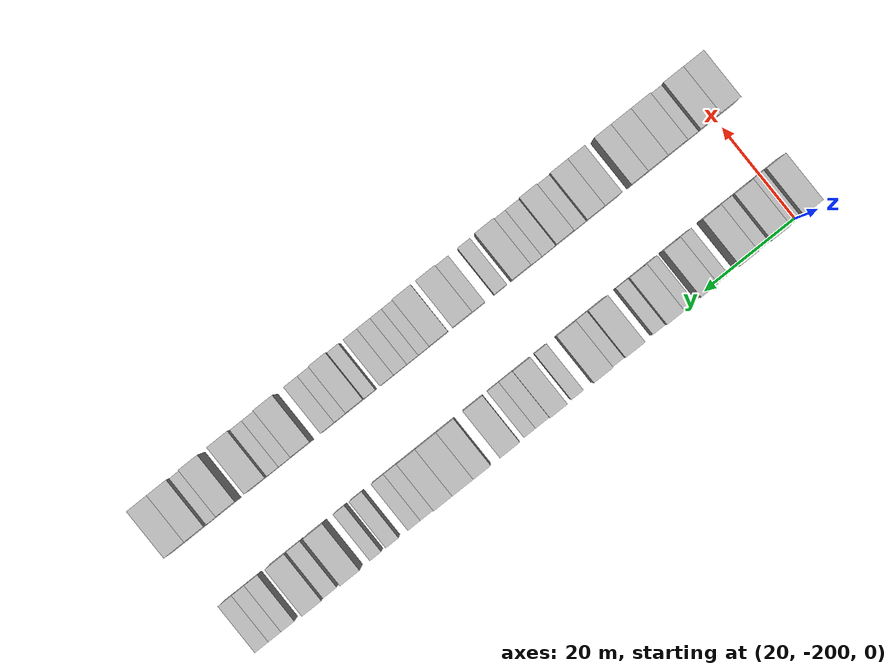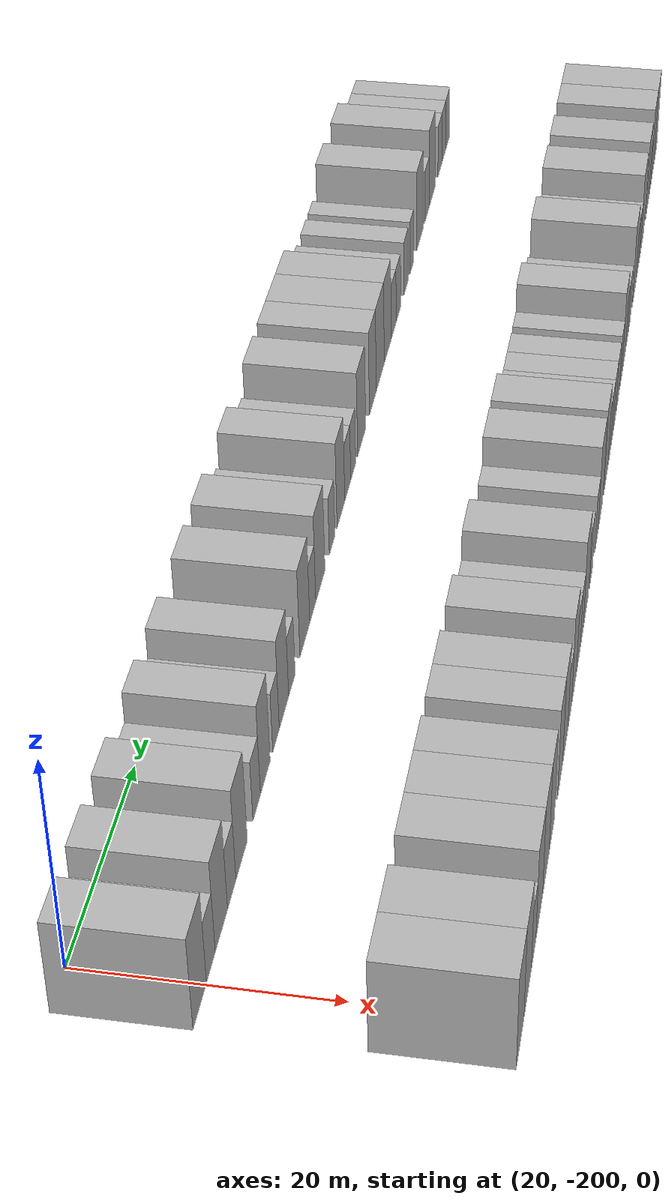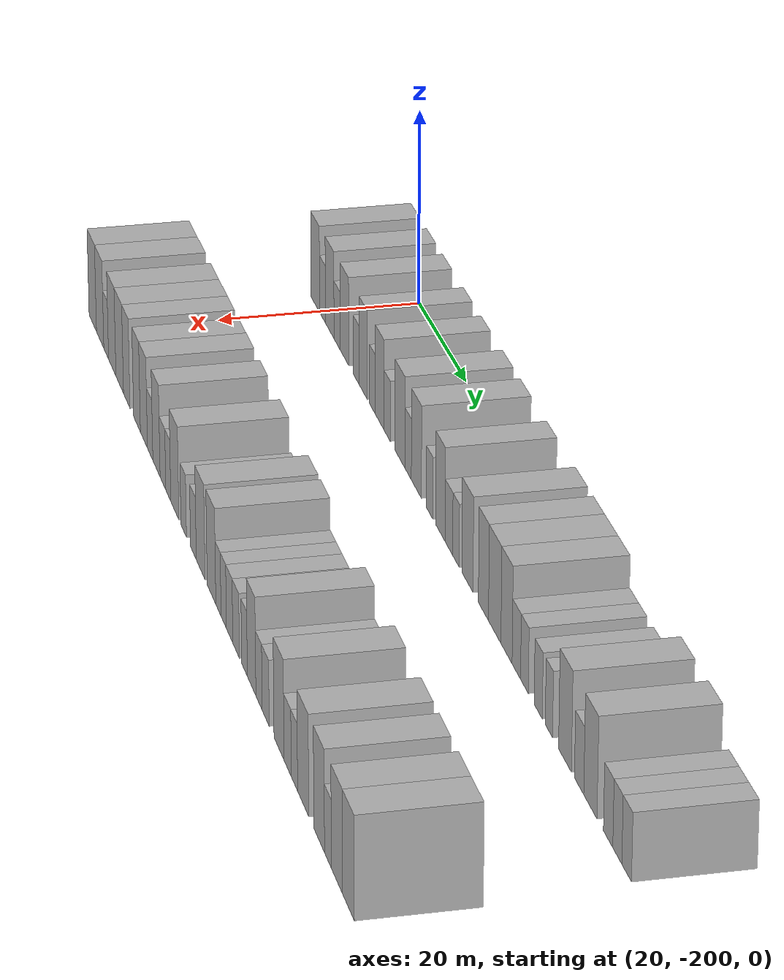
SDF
<sdf version="1.6">
 <world name="default">
  <model name="building_1">
   <static>1</static>
   <pose>25.0000 -201.9250 0 0.000000 0.000000 0.000000</pose>
   <link name="link">
    <pose>0 0 4.50 0 0 0</pose>
    <collision name="collision"><geometry><box><size>10.0000 4.1501 9.0000</size></box></geometry></collision>
    <visual name="visual">
     <cast_shadows>0</cast_shadows>
     <geometry><box><size>10.0000 4.1501 9.0000</size></box></geometry>
     <material>
      <script>
       <uri>model://HANNAS_wall/materials/scripts</uri>
       <uri>model://HANNAS_wall/materials/textures</uri>
       <name>vrc/HANNAS_wall</name>
      </script>
     </material>
    </visual>
   </link>
  </model>
  <model name="building_2">
   <static>1</static>
   <pose>25.0000 -198.4543 0 0.000000 0.000000 0.000000</pose>
   <link name="link">
    <pose>0 0 3.00 0 0 0</pose>
    <collision name="collision"><geometry><box><size>10.0000 2.7912 6.0000</size></box></geometry></collision>
    <visual name="visual">
     <cast_shadows>0</cast_shadows>
     <geometry><box><size>10.0000 2.7912 6.0000</size></box></geometry>
     <material>
      <script>
       <uri>model://HANNAS_wall/materials/scripts</uri>
       <uri>model://HANNAS_wall/materials/textures</uri>
       <name>vrc/HANNAS_wall</name>
      </script>
     </material>
    </visual>
   </link>
  </model>
  <model name="building_3">
   <static>1</static>
   <pose>25.0000 -195.0415 0 0.000000 0.000000 0.000000</pose>
   <link name="link">
    <pose>0 0 4.50 0 0 0</pose>
    <collision name="collision"><geometry><box><size>10.0000 4.0345 9.0000</size></box></geometry></collision>
    <visual name="visual">
     <cast_shadows>0</cast_shadows>
     <geometry><box><size>10.0000 4.0345 9.0000</size></box></geometry>
     <material>
      <script>
       <uri>model://HANNAS_wall/materials/scripts</uri>
       <uri>model://HANNAS_wall/materials/textures</uri>
       <name>vrc/HANNAS_wall</name>
      </script>
     </material>
    </visual>
   </link>
  </model>
  <model name="building_4">
   <static>1</static>
   <pose>25.0000 -191.6100 0 0.000000 0.000000 0.000000</pose>
   <link name="link">
    <pose>0 0 3.00 0 0 0</pose>
    <collision name="collision"><geometry><box><size>10.0000 2.8284 6.0000</size></box></geometry></collision>
    <visual name="visual">
     <cast_shadows>0</cast_shadows>
     <geometry><box><size>10.0000 2.8284 6.0000</size></box></geometry>
     <material>
      <script>
       <uri>model://HANNAS_wall/materials/scripts</uri>
       <uri>model://HANNAS_wall/materials/textures</uri>
       <name>vrc/HANNAS_wall</name>
      </script>
     </material>
    </visual>
   </link>
  </model>
  <model name="building_5">
   <static>1</static>
   <pose>25.0000 -188.2119 0 0.000000 0.000000 0.000000</pose>
   <link name="link">
    <pose>0 0 4.50 0 0 0</pose>
    <collision name="collision"><geometry><box><size>10.0000 3.9679 9.0000</size></box></geometry></collision>
    <visual name="visual">
     <cast_shadows>0</cast_shadows>
     <geometry><box><size>10.0000 3.9679 9.0000</size></box></geometry>
     <material>
      <script>
       <uri>model://HANNAS_wall/materials/scripts</uri>
       <uri>model://HANNAS_wall/materials/textures</uri>
       <name>vrc/HANNAS_wall</name>
      </script>
     </material>
    </visual>
   </link>
  </model>
  <model name="building_6">
   <static>1</static>
   <pose>25.0000 -182.8537 0 0.000000 0.000000 0.000000</pose>
   <link name="link">
    <pose>0 0 3.00 0 0 0</pose>
    <collision name="collision"><geometry><box><size>10.0000 2.7484 6.0000</size></box></geometry></collision>
    <visual name="visual">
     <cast_shadows>0</cast_shadows>
     <geometry><box><size>10.0000 2.7484 6.0000</size></box></geometry>
     <material>
      <script>
       <uri>model://HANNAS_wall/materials/scripts</uri>
       <uri>model://HANNAS_wall/materials/textures</uri>
       <name>vrc/HANNAS_wall</name>
      </script>
     </material>
    </visual>
   </link>
  </model>
  <model name="building_7">
   <static>1</static>
   <pose>25.0000 -179.6666 0 0.000000 0.000000 0.000000</pose>
   <link name="link">
    <pose>0 0 4.50 0 0 0</pose>
    <collision name="collision"><geometry><box><size>10.0000 3.6259 9.0000</size></box></geometry></collision>
    <visual name="visual">
     <cast_shadows>0</cast_shadows>
     <geometry><box><size>10.0000 3.6259 9.0000</size></box></geometry>
     <material>
      <script>
       <uri>model://HANNAS_wall/materials/scripts</uri>
       <uri>model://HANNAS_wall/materials/textures</uri>
       <name>vrc/HANNAS_wall</name>
      </script>
     </material>
    </visual>
   </link>
  </model>
  <model name="building_8">
   <static>1</static>
   <pose>25.0000 -175.5762 0 0.000000 0.000000 0.000000</pose>
   <link name="link">
    <pose>0 0 3.00 0 0 0</pose>
    <collision name="collision"><geometry><box><size>10.0000 2.5548 6.0000</size></box></geometry></collision>
    <visual name="visual">
     <cast_shadows>0</cast_shadows>
     <geometry><box><size>10.0000 2.5548 6.0000</size></box></geometry>
     <material>
      <script>
       <uri>model://HANNAS_wall/materials/scripts</uri>
       <uri>model://HANNAS_wall/materials/textures</uri>
       <name>vrc/HANNAS_wall</name>
      </script>
     </material>
    </visual>
   </link>
  </model>
  <model name="building_9">
   <static>1</static>
   <pose>25.0000 -172.4359 0 0.000000 0.000000 0.000000</pose>
   <link name="link">
    <pose>0 0 4.50 0 0 0</pose>
    <collision name="collision"><geometry><box><size>10.0000 3.7259 9.0000</size></box></geometry></collision>
    <visual name="visual">
     <cast_shadows>0</cast_shadows>
     <geometry><box><size>10.0000 3.7259 9.0000</size></box></geometry>
     <material>
      <script>
       <uri>model://HANNAS_wall/materials/scripts</uri>
       <uri>model://HANNAS_wall/materials/textures</uri>
       <name>vrc/HANNAS_wall</name>
      </script>
     </material>
    </visual>
   </link>
  </model>
  <model name="building_10">
   <static>1</static>
   <pose>25.0000 -169.2458 0 0.000000 0.000000 0.000000</pose>
   <link name="link">
    <pose>0 0 3.00 0 0 0</pose>
    <collision name="collision"><geometry><box><size>10.0000 2.6541 6.0000</size></box></geometry></collision>
    <visual name="visual">
     <cast_shadows>0</cast_shadows>
     <geometry><box><size>10.0000 2.6541 6.0000</size></box></geometry>
     <material>
      <script>
       <uri>model://HANNAS_wall/materials/scripts</uri>
       <uri>model://HANNAS_wall/materials/textures</uri>
       <name>vrc/HANNAS_wall</name>
      </script>
     </material>
    </visual>
   </link>
  </model>
  <model name="building_11">
   <static>1</static>
   <pose>25.0000 -163.8209 0 0.000000 0.000000 0.000000</pose>
   <link name="link">
    <pose>0 0 4.50 0 0 0</pose>
    <collision name="collision"><geometry><box><size>10.0000 4.1957 9.0000</size></box></geometry></collision>
    <visual name="visual">
     <cast_shadows>0</cast_shadows>
     <geometry><box><size>10.0000 4.1957 9.0000</size></box></geometry>
     <material>
      <script>
       <uri>model://HANNAS_wall/materials/scripts</uri>
       <uri>model://HANNAS_wall/materials/textures</uri>
       <name>vrc/HANNAS_wall</name>
      </script>
     </material>
    </visual>
   </link>
  </model>
  <model name="building_12">
   <static>1</static>
   <pose>25.0000 -160.4024 0 0.000000 0.000000 0.000000</pose>
   <link name="link">
    <pose>0 0 3.00 0 0 0</pose>
    <collision name="collision"><geometry><box><size>10.0000 2.6414 6.0000</size></box></geometry></collision>
    <visual name="visual">
     <cast_shadows>0</cast_shadows>
     <geometry><box><size>10.0000 2.6414 6.0000</size></box></geometry>
     <material>
      <script>
       <uri>model://HANNAS_wall/materials/scripts</uri>
       <uri>model://HANNAS_wall/materials/textures</uri>
       <name>vrc/HANNAS_wall</name>
      </script>
     </material>
    </visual>
   </link>
  </model>
  <model name="building_13">
   <static>1</static>
   <pose>25.0000 -157.0162 0 0.000000 0.000000 0.000000</pose>
   <link name="link">
    <pose>0 0 4.50 0 0 0</pose>
    <collision name="collision"><geometry><box><size>10.0000 4.1309 9.0000</size></box></geometry></collision>
    <visual name="visual">
     <cast_shadows>0</cast_shadows>
     <geometry><box><size>10.0000 4.1309 9.0000</size></box></geometry>
     <material>
      <script>
       <uri>model://HANNAS_wall/materials/scripts</uri>
       <uri>model://HANNAS_wall/materials/textures</uri>
       <name>vrc/HANNAS_wall</name>
      </script>
     </material>
    </visual>
   </link>
  </model>
  <model name="building_14">
   <static>1</static>
   <pose>25.0000 -151.6285 0 0.000000 0.000000 0.000000</pose>
   <link name="link">
    <pose>0 0 3.00 0 0 0</pose>
    <collision name="collision"><geometry><box><size>10.0000 2.6447 6.0000</size></box></geometry></collision>
    <visual name="visual">
     <cast_shadows>0</cast_shadows>
     <geometry><box><size>10.0000 2.6447 6.0000</size></box></geometry>
     <material>
      <script>
       <uri>model://HANNAS_wall/materials/scripts</uri>
       <uri>model://HANNAS_wall/materials/textures</uri>
       <name>vrc/HANNAS_wall</name>
      </script>
     </material>
    </visual>
   </link>
  </model>
  <model name="building_15">
   <static>1</static>
   <pose>25.0000 -147.4297 0 0.000000 0.000000 0.000000</pose>
   <link name="link">
    <pose>0 0 4.50 0 0 0</pose>
    <collision name="collision"><geometry><box><size>10.0000 3.7528 9.0000</size></box></geometry></collision>
    <visual name="visual">
     <cast_shadows>0</cast_shadows>
     <geometry><box><size>10.0000 3.7528 9.0000</size></box></geometry>
     <material>
      <script>
       <uri>model://HANNAS_wall/materials/scripts</uri>
       <uri>model://HANNAS_wall/materials/textures</uri>
       <name>vrc/HANNAS_wall</name>
      </script>
     </material>
    </visual>
   </link>
  </model>
  <model name="building_16">
   <static>1</static>
   <pose>25.0000 -144.0700 0 0.000000 0.000000 0.000000</pose>
   <link name="link">
    <pose>0 0 3.00 0 0 0</pose>
    <collision name="collision"><geometry><box><size>10.0000 2.9665 6.0000</size></box></geometry></collision>
    <visual name="visual">
     <cast_shadows>0</cast_shadows>
     <geometry><box><size>10.0000 2.9665 6.0000</size></box></geometry>
     <material>
      <script>
       <uri>model://HANNAS_wall/materials/scripts</uri>
       <uri>model://HANNAS_wall/materials/textures</uri>
       <name>vrc/HANNAS_wall</name>
      </script>
     </material>
    </visual>
   </link>
  </model>
  <model name="building_17">
   <static>1</static>
   <pose>25.0000 -141.3345 0 0.000000 0.000000 0.000000</pose>
   <link name="link">
    <pose>0 0 3.00 0 0 0</pose>
    <collision name="collision"><geometry><box><size>10.0000 2.5046 6.0000</size></box></geometry></collision>
    <visual name="visual">
     <cast_shadows>0</cast_shadows>
     <geometry><box><size>10.0000 2.5046 6.0000</size></box></geometry>
     <material>
      <script>
       <uri>model://HANNAS_wall/materials/scripts</uri>
       <uri>model://HANNAS_wall/materials/textures</uri>
       <name>vrc/HANNAS_wall</name>
      </script>
     </material>
    </visual>
   </link>
  </model>
  <model name="building_18">
   <static>1</static>
   <pose>25.0000 -136.9713 0 0.000000 0.000000 0.000000</pose>
   <link name="link">
    <pose>0 0 4.50 0 0 0</pose>
    <collision name="collision"><geometry><box><size>10.0000 4.2218 9.0000</size></box></geometry></collision>
    <visual name="visual">
     <cast_shadows>0</cast_shadows>
     <geometry><box><size>10.0000 4.2218 9.0000</size></box></geometry>
     <material>
      <script>
       <uri>model://HANNAS_wall/materials/scripts</uri>
       <uri>model://HANNAS_wall/materials/textures</uri>
       <name>vrc/HANNAS_wall</name>
      </script>
     </material>
    </visual>
   </link>
  </model>
  <model name="building_19">
   <static>1</static>
   <pose>25.0000 -130.9918 0 0.000000 0.000000 0.000000</pose>
   <link name="link">
    <pose>0 0 4.50 0 0 0</pose>
    <collision name="collision"><geometry><box><size>10.0000 3.7371 9.0000</size></box></geometry></collision>
    <visual name="visual">
     <cast_shadows>0</cast_shadows>
     <geometry><box><size>10.0000 3.7371 9.0000</size></box></geometry>
     <material>
      <script>
       <uri>model://HANNAS_wall/materials/scripts</uri>
       <uri>model://HANNAS_wall/materials/textures</uri>
       <name>vrc/HANNAS_wall</name>
      </script>
     </material>
    </visual>
   </link>
  </model>
  <model name="building_20">
   <static>1</static>
   <pose>25.0000 -126.8824 0 0.000000 0.000000 0.000000</pose>
   <link name="link">
    <pose>0 0 4.50 0 0 0</pose>
    <collision name="collision"><geometry><box><size>10.0000 4.4817 9.0000</size></box></geometry></collision>
    <visual name="visual">
     <cast_shadows>0</cast_shadows>
     <geometry><box><size>10.0000 4.4817 9.0000</size></box></geometry>
     <material>
      <script>
       <uri>model://HANNAS_wall/materials/scripts</uri>
       <uri>model://HANNAS_wall/materials/textures</uri>
       <name>vrc/HANNAS_wall</name>
      </script>
     </material>
    </visual>
   </link>
  </model>
  <model name="building_21">
   <static>1</static>
   <pose>25.0000 -122.6475 0 0.000000 0.000000 0.000000</pose>
   <link name="link">
    <pose>0 0 4.50 0 0 0</pose>
    <collision name="collision"><geometry><box><size>10.0000 3.9882 9.0000</size></box></geometry></collision>
    <visual name="visual">
     <cast_shadows>0</cast_shadows>
     <geometry><box><size>10.0000 3.9882 9.0000</size></box></geometry>
     <material>
      <script>
       <uri>model://HANNAS_wall/materials/scripts</uri>
       <uri>model://HANNAS_wall/materials/textures</uri>
       <name>vrc/HANNAS_wall</name>
      </script>
     </material>
    </visual>
   </link>
  </model>
  <model name="building_22">
   <static>1</static>
   <pose>25.0000 -119.1737 0 0.000000 0.000000 0.000000</pose>
   <link name="link">
    <pose>0 0 3.00 0 0 0</pose>
    <collision name="collision"><geometry><box><size>10.0000 2.9594 6.0000</size></box></geometry></collision>
    <visual name="visual">
     <cast_shadows>0</cast_shadows>
     <geometry><box><size>10.0000 2.9594 6.0000</size></box></geometry>
     <material>
      <script>
       <uri>model://HANNAS_wall/materials/scripts</uri>
       <uri>model://HANNAS_wall/materials/textures</uri>
       <name>vrc/HANNAS_wall</name>
      </script>
     </material>
    </visual>
   </link>
  </model>
  <model name="building_23">
   <static>1</static>
   <pose>25.0000 -116.3464 0 0.000000 0.000000 0.000000</pose>
   <link name="link">
    <pose>0 0 3.00 0 0 0</pose>
    <collision name="collision"><geometry><box><size>10.0000 2.6951 6.0000</size></box></geometry></collision>
    <visual name="visual">
     <cast_shadows>0</cast_shadows>
     <geometry><box><size>10.0000 2.6951 6.0000</size></box></geometry>
     <material>
      <script>
       <uri>model://HANNAS_wall/materials/scripts</uri>
       <uri>model://HANNAS_wall/materials/textures</uri>
       <name>vrc/HANNAS_wall</name>
      </script>
     </material>
    </visual>
   </link>
  </model>
  <model name="building_24">
   <static>1</static>
   <pose>25.0000 -111.6198 0 0.000000 0.000000 0.000000</pose>
   <link name="link">
    <pose>0 0 3.00 0 0 0</pose>
    <collision name="collision"><geometry><box><size>10.0000 2.7581 6.0000</size></box></geometry></collision>
    <visual name="visual">
     <cast_shadows>0</cast_shadows>
     <geometry><box><size>10.0000 2.7581 6.0000</size></box></geometry>
     <material>
      <script>
       <uri>model://HANNAS_wall/materials/scripts</uri>
       <uri>model://HANNAS_wall/materials/textures</uri>
       <name>vrc/HANNAS_wall</name>
      </script>
     </material>
    </visual>
   </link>
  </model>
  <model name="building_25">
   <static>1</static>
   <pose>25.0000 -108.0218 0 0.000000 0.000000 0.000000</pose>
   <link name="link">
    <pose>0 0 3.00 0 0 0</pose>
    <collision name="collision"><geometry><box><size>10.0000 2.4379 6.0000</size></box></geometry></collision>
    <visual name="visual">
     <cast_shadows>0</cast_shadows>
     <geometry><box><size>10.0000 2.4379 6.0000</size></box></geometry>
     <material>
      <script>
       <uri>model://HANNAS_wall/materials/scripts</uri>
       <uri>model://HANNAS_wall/materials/textures</uri>
       <name>vrc/HANNAS_wall</name>
      </script>
     </material>
    </visual>
   </link>
  </model>
  <model name="building_26">
   <static>1</static>
   <pose>25.0000 -102.7193 0 0.000000 0.000000 0.000000</pose>
   <link name="link">
    <pose>0 0 4.50 0 0 0</pose>
    <collision name="collision"><geometry><box><size>10.0000 4.1671 9.0000</size></box></geometry></collision>
    <visual name="visual">
     <cast_shadows>0</cast_shadows>
     <geometry><box><size>10.0000 4.1671 9.0000</size></box></geometry>
     <material>
      <script>
       <uri>model://HANNAS_wall/materials/scripts</uri>
       <uri>model://HANNAS_wall/materials/textures</uri>
       <name>vrc/HANNAS_wall</name>
      </script>
     </material>
    </visual>
   </link>
  </model>
  <model name="building_27">
   <static>1</static>
   <pose>25.0000 -98.1461 0 0.000000 0.000000 0.000000</pose>
   <link name="link">
    <pose>0 0 3.00 0 0 0</pose>
    <collision name="collision"><geometry><box><size>10.0000 2.9792 6.0000</size></box></geometry></collision>
    <visual name="visual">
     <cast_shadows>0</cast_shadows>
     <geometry><box><size>10.0000 2.9792 6.0000</size></box></geometry>
     <material>
      <script>
       <uri>model://HANNAS_wall/materials/scripts</uri>
       <uri>model://HANNAS_wall/materials/textures</uri>
       <name>vrc/HANNAS_wall</name>
      </script>
     </material>
    </visual>
   </link>
  </model>
  <model name="building_28">
   <static>1</static>
   <pose>25.0000 -94.5732 0 0.000000 0.000000 0.000000</pose>
   <link name="link">
    <pose>0 0 4.50 0 0 0</pose>
    <collision name="collision"><geometry><box><size>10.0000 4.1664 9.0000</size></box></geometry></collision>
    <visual name="visual">
     <cast_shadows>0</cast_shadows>
     <geometry><box><size>10.0000 4.1664 9.0000</size></box></geometry>
     <material>
      <script>
       <uri>model://HANNAS_wall/materials/scripts</uri>
       <uri>model://HANNAS_wall/materials/textures</uri>
       <name>vrc/HANNAS_wall</name>
      </script>
     </material>
    </visual>
   </link>
  </model>
  <model name="building_29">
   <static>1</static>
   <pose>25.0000 -89.0513 0 0.000000 0.000000 0.000000</pose>
   <link name="link">
    <pose>0 0 3.00 0 0 0</pose>
    <collision name="collision"><geometry><box><size>10.0000 2.8774 6.0000</size></box></geometry></collision>
    <visual name="visual">
     <cast_shadows>0</cast_shadows>
     <geometry><box><size>10.0000 2.8774 6.0000</size></box></geometry>
     <material>
      <script>
       <uri>model://HANNAS_wall/materials/scripts</uri>
       <uri>model://HANNAS_wall/materials/textures</uri>
       <name>vrc/HANNAS_wall</name>
      </script>
     </material>
    </visual>
   </link>
  </model>
  <model name="building_30">
   <static>1</static>
   <pose>25.0000 -86.2458 0 0.000000 0.000000 0.000000</pose>
   <link name="link">
    <pose>0 0 3.00 0 0 0</pose>
    <collision name="collision"><geometry><box><size>10.0000 2.7337 6.0000</size></box></geometry></collision>
    <visual name="visual">
     <cast_shadows>0</cast_shadows>
     <geometry><box><size>10.0000 2.7337 6.0000</size></box></geometry>
     <material>
      <script>
       <uri>model://HANNAS_wall/materials/scripts</uri>
       <uri>model://HANNAS_wall/materials/textures</uri>
       <name>vrc/HANNAS_wall</name>
      </script>
     </material>
    </visual>
   </link>
  </model>
  <model name="building_31">
   <static>1</static>
   <pose>25.0000 -83.4233 0 0.000000 0.000000 0.000000</pose>
   <link name="link">
    <pose>0 0 3.00 0 0 0</pose>
    <collision name="collision"><geometry><box><size>10.0000 2.9113 6.0000</size></box></geometry></collision>
    <visual name="visual">
     <cast_shadows>0</cast_shadows>
     <geometry><box><size>10.0000 2.9113 6.0000</size></box></geometry>
     <material>
      <script>
       <uri>model://HANNAS_wall/materials/scripts</uri>
       <uri>model://HANNAS_wall/materials/textures</uri>
       <name>vrc/HANNAS_wall</name>
      </script>
     </material>
    </visual>
   </link>
  </model>
  <model name="building_99">
   <static>1</static>
   <pose>47.0000 -201.8210 0 0.000000 0.000000 0.000000</pose>
   <link name="link">
    <pose>0 0 4.50 0 0 0</pose>
    <collision name="collision"><geometry><box><size>10.0000 4.3580 9.0000</size></box></geometry></collision>
    <visual name="visual">
     <cast_shadows>0</cast_shadows>
     <geometry><box><size>10.0000 4.3580 9.0000</size></box></geometry>
     <material>
      <script>
       <uri>model://HANNAS_wall/materials/scripts</uri>
       <uri>model://HANNAS_wall/materials/textures</uri>
       <name>vrc/HANNAS_wall</name>
      </script>
     </material>
    </visual>
   </link>
  </model>
  <model name="building_100">
   <static>1</static>
   <pose>47.0000 -197.4983 0 0.000000 0.000000 0.000000</pose>
   <link name="link">
    <pose>0 0 4.50 0 0 0</pose>
    <collision name="collision"><geometry><box><size>10.0000 4.2874 9.0000</size></box></geometry></collision>
    <visual name="visual">
     <cast_shadows>0</cast_shadows>
     <geometry><box><size>10.0000 4.2874 9.0000</size></box></geometry>
     <material>
      <script>
       <uri>model://HANNAS_wall/materials/scripts</uri>
       <uri>model://HANNAS_wall/materials/textures</uri>
       <name>vrc/HANNAS_wall</name>
      </script>
     </material>
    </visual>
   </link>
  </model>
  <model name="building_101">
   <static>1</static>
   <pose>47.0000 -193.9791 0 0.000000 0.000000 0.000000</pose>
   <link name="link">
    <pose>0 0 3.00 0 0 0</pose>
    <collision name="collision"><geometry><box><size>10.0000 2.7510 6.0000</size></box></geometry></collision>
    <visual name="visual">
     <cast_shadows>0</cast_shadows>
     <geometry><box><size>10.0000 2.7510 6.0000</size></box></geometry>
     <material>
      <script>
       <uri>model://HANNAS_wall/materials/scripts</uri>
       <uri>model://HANNAS_wall/materials/textures</uri>
       <name>vrc/HANNAS_wall</name>
      </script>
     </material>
    </visual>
   </link>
  </model>
  <model name="building_102">
   <static>1</static>
   <pose>47.0000 -190.5100 0 0.000000 0.000000 0.000000</pose>
   <link name="link">
    <pose>0 0 4.50 0 0 0</pose>
    <collision name="collision"><geometry><box><size>10.0000 4.1871 9.0000</size></box></geometry></collision>
    <visual name="visual">
     <cast_shadows>0</cast_shadows>
     <geometry><box><size>10.0000 4.1871 9.0000</size></box></geometry>
     <material>
      <script>
       <uri>model://HANNAS_wall/materials/scripts</uri>
       <uri>model://HANNAS_wall/materials/textures</uri>
       <name>vrc/HANNAS_wall</name>
      </script>
     </material>
    </visual>
   </link>
  </model>
  <model name="building_103">
   <static>1</static>
   <pose>47.0000 -186.2833 0 0.000000 0.000000 0.000000</pose>
   <link name="link">
    <pose>0 0 4.50 0 0 0</pose>
    <collision name="collision"><geometry><box><size>10.0000 4.2664 9.0000</size></box></geometry></collision>
    <visual name="visual">
     <cast_shadows>0</cast_shadows>
     <geometry><box><size>10.0000 4.2664 9.0000</size></box></geometry>
     <material>
      <script>
       <uri>model://HANNAS_wall/materials/scripts</uri>
       <uri>model://HANNAS_wall/materials/textures</uri>
       <name>vrc/HANNAS_wall</name>
      </script>
     </material>
    </visual>
   </link>
  </model>
  <model name="building_104">
   <static>1</static>
   <pose>47.0000 -182.3498 0 0.000000 0.000000 0.000000</pose>
   <link name="link">
    <pose>0 0 4.50 0 0 0</pose>
    <collision name="collision"><geometry><box><size>10.0000 3.6005 9.0000</size></box></geometry></collision>
    <visual name="visual">
     <cast_shadows>0</cast_shadows>
     <geometry><box><size>10.0000 3.6005 9.0000</size></box></geometry>
     <material>
      <script>
       <uri>model://HANNAS_wall/materials/scripts</uri>
       <uri>model://HANNAS_wall/materials/textures</uri>
       <name>vrc/HANNAS_wall</name>
      </script>
     </material>
    </visual>
   </link>
  </model>
  <model name="building_105">
   <static>1</static>
   <pose>47.0000 -176.7281 0 0.000000 0.000000 0.000000</pose>
   <link name="link">
    <pose>0 0 4.50 0 0 0</pose>
    <collision name="collision"><geometry><box><size>10.0000 3.6428 9.0000</size></box></geometry></collision>
    <visual name="visual">
     <cast_shadows>0</cast_shadows>
     <geometry><box><size>10.0000 3.6428 9.0000</size></box></geometry>
     <material>
      <script>
       <uri>model://HANNAS_wall/materials/scripts</uri>
       <uri>model://HANNAS_wall/materials/textures</uri>
       <name>vrc/HANNAS_wall</name>
      </script>
     </material>
    </visual>
   </link>
  </model>
  <model name="building_106">
   <static>1</static>
   <pose>47.0000 -173.0132 0 0.000000 0.000000 0.000000</pose>
   <link name="link">
    <pose>0 0 4.50 0 0 0</pose>
    <collision name="collision"><geometry><box><size>10.0000 3.7869 9.0000</size></box></geometry></collision>
    <visual name="visual">
     <cast_shadows>0</cast_shadows>
     <geometry><box><size>10.0000 3.7869 9.0000</size></box></geometry>
     <material>
      <script>
       <uri>model://HANNAS_wall/materials/scripts</uri>
       <uri>model://HANNAS_wall/materials/textures</uri>
       <name>vrc/HANNAS_wall</name>
      </script>
     </material>
    </visual>
   </link>
  </model>
  <model name="building_107">
   <static>1</static>
   <pose>47.0000 -169.7011 0 0.000000 0.000000 0.000000</pose>
   <link name="link">
    <pose>0 0 3.00 0 0 0</pose>
    <collision name="collision"><geometry><box><size>10.0000 2.8374 6.0000</size></box></geometry></collision>
    <visual name="visual">
     <cast_shadows>0</cast_shadows>
     <geometry><box><size>10.0000 2.8374 6.0000</size></box></geometry>
     <material>
      <script>
       <uri>model://HANNAS_wall/materials/scripts</uri>
       <uri>model://HANNAS_wall/materials/textures</uri>
       <name>vrc/HANNAS_wall</name>
      </script>
     </material>
    </visual>
   </link>
  </model>
  <model name="building_108">
   <static>1</static>
   <pose>47.0000 -166.4025 0 0.000000 0.000000 0.000000</pose>
   <link name="link">
    <pose>0 0 4.50 0 0 0</pose>
    <collision name="collision"><geometry><box><size>10.0000 3.7596 9.0000</size></box></geometry></collision>
    <visual name="visual">
     <cast_shadows>0</cast_shadows>
     <geometry><box><size>10.0000 3.7596 9.0000</size></box></geometry>
     <material>
      <script>
       <uri>model://HANNAS_wall/materials/scripts</uri>
       <uri>model://HANNAS_wall/materials/textures</uri>
       <name>vrc/HANNAS_wall</name>
      </script>
     </material>
    </visual>
   </link>
  </model>
  <model name="building_109">
   <static>1</static>
   <pose>47.0000 -163.0477 0 0.000000 0.000000 0.000000</pose>
   <link name="link">
    <pose>0 0 3.00 0 0 0</pose>
    <collision name="collision"><geometry><box><size>10.0000 2.9501 6.0000</size></box></geometry></collision>
    <visual name="visual">
     <cast_shadows>0</cast_shadows>
     <geometry><box><size>10.0000 2.9501 6.0000</size></box></geometry>
     <material>
      <script>
       <uri>model://HANNAS_wall/materials/scripts</uri>
       <uri>model://HANNAS_wall/materials/textures</uri>
       <name>vrc/HANNAS_wall</name>
      </script>
     </material>
    </visual>
   </link>
  </model>
  <model name="building_110">
   <static>1</static>
   <pose>47.0000 -160.3127 0 0.000000 0.000000 0.000000</pose>
   <link name="link">
    <pose>0 0 3.00 0 0 0</pose>
    <collision name="collision"><geometry><box><size>10.0000 2.5200 6.0000</size></box></geometry></collision>
    <visual name="visual">
     <cast_shadows>0</cast_shadows>
     <geometry><box><size>10.0000 2.5200 6.0000</size></box></geometry>
     <material>
      <script>
       <uri>model://HANNAS_wall/materials/scripts</uri>
       <uri>model://HANNAS_wall/materials/textures</uri>
       <name>vrc/HANNAS_wall</name>
      </script>
     </material>
    </visual>
   </link>
  </model>
  <model name="building_111">
   <static>1</static>
   <pose>47.0000 -157.0116 0 0.000000 0.000000 0.000000</pose>
   <link name="link">
    <pose>0 0 4.50 0 0 0</pose>
    <collision name="collision"><geometry><box><size>10.0000 4.0821 9.0000</size></box></geometry></collision>
    <visual name="visual">
     <cast_shadows>0</cast_shadows>
     <geometry><box><size>10.0000 4.0821 9.0000</size></box></geometry>
     <material>
      <script>
       <uri>model://HANNAS_wall/materials/scripts</uri>
       <uri>model://HANNAS_wall/materials/textures</uri>
       <name>vrc/HANNAS_wall</name>
      </script>
     </material>
    </visual>
   </link>
  </model>
  <model name="building_112">
   <static>1</static>
   <pose>47.0000 -152.6086 0 0.000000 0.000000 0.000000</pose>
   <link name="link">
    <pose>0 0 3.00 0 0 0</pose>
    <collision name="collision"><geometry><box><size>10.0000 2.7238 6.0000</size></box></geometry></collision>
    <visual name="visual">
     <cast_shadows>0</cast_shadows>
     <geometry><box><size>10.0000 2.7238 6.0000</size></box></geometry>
     <material>
      <script>
       <uri>model://HANNAS_wall/materials/scripts</uri>
       <uri>model://HANNAS_wall/materials/textures</uri>
       <name>vrc/HANNAS_wall</name>
      </script>
     </material>
    </visual>
   </link>
  </model>
  <model name="building_113">
   <static>1</static>
   <pose>47.0000 -147.8594 0 0.000000 0.000000 0.000000</pose>
   <link name="link">
    <pose>0 0 3.00 0 0 0</pose>
    <collision name="collision"><geometry><box><size>10.0000 2.7747 6.0000</size></box></geometry></collision>
    <visual name="visual">
     <cast_shadows>0</cast_shadows>
     <geometry><box><size>10.0000 2.7747 6.0000</size></box></geometry>
     <material>
      <script>
       <uri>model://HANNAS_wall/materials/scripts</uri>
       <uri>model://HANNAS_wall/materials/textures</uri>
       <name>vrc/HANNAS_wall</name>
      </script>
     </material>
    </visual>
   </link>
  </model>
  <model name="building_114">
   <static>1</static>
   <pose>47.0000 -144.3681 0 0.000000 0.000000 0.000000</pose>
   <link name="link">
    <pose>0 0 4.50 0 0 0</pose>
    <collision name="collision"><geometry><box><size>10.0000 4.2079 9.0000</size></box></geometry></collision>
    <visual name="visual">
     <cast_shadows>0</cast_shadows>
     <geometry><box><size>10.0000 4.2079 9.0000</size></box></geometry>
     <material>
      <script>
       <uri>model://HANNAS_wall/materials/scripts</uri>
       <uri>model://HANNAS_wall/materials/textures</uri>
       <name>vrc/HANNAS_wall</name>
      </script>
     </material>
    </visual>
   </link>
  </model>
  <model name="building_115">
   <static>1</static>
   <pose>47.0000 -139.2565 0 0.000000 0.000000 0.000000</pose>
   <link name="link">
    <pose>0 0 4.50 0 0 0</pose>
    <collision name="collision"><geometry><box><size>10.0000 4.0152 9.0000</size></box></geometry></collision>
    <visual name="visual">
     <cast_shadows>0</cast_shadows>
     <geometry><box><size>10.0000 4.0152 9.0000</size></box></geometry>
     <material>
      <script>
       <uri>model://HANNAS_wall/materials/scripts</uri>
       <uri>model://HANNAS_wall/materials/textures</uri>
       <name>vrc/HANNAS_wall</name>
      </script>
     </material>
    </visual>
   </link>
  </model>
  <model name="building_116">
   <static>1</static>
   <pose>47.0000 -136.0410 0 0.000000 0.000000 0.000000</pose>
   <link name="link">
    <pose>0 0 3.00 0 0 0</pose>
    <collision name="collision"><geometry><box><size>10.0000 2.4158 6.0000</size></box></geometry></collision>
    <visual name="visual">
     <cast_shadows>0</cast_shadows>
     <geometry><box><size>10.0000 2.4158 6.0000</size></box></geometry>
     <material>
      <script>
       <uri>model://HANNAS_wall/materials/scripts</uri>
       <uri>model://HANNAS_wall/materials/textures</uri>
       <name>vrc/HANNAS_wall</name>
      </script>
     </material>
    </visual>
   </link>
  </model>
  <model name="building_117">
   <static>1</static>
   <pose>47.0000 -133.5976 0 0.000000 0.000000 0.000000</pose>
   <link name="link">
    <pose>0 0 3.00 0 0 0</pose>
    <collision name="collision"><geometry><box><size>10.0000 2.4709 6.0000</size></box></geometry></collision>
    <visual name="visual">
     <cast_shadows>0</cast_shadows>
     <geometry><box><size>10.0000 2.4709 6.0000</size></box></geometry>
     <material>
      <script>
       <uri>model://HANNAS_wall/materials/scripts</uri>
       <uri>model://HANNAS_wall/materials/textures</uri>
       <name>vrc/HANNAS_wall</name>
      </script>
     </material>
    </visual>
   </link>
  </model>
  <model name="building_118">
   <static>1</static>
   <pose>47.0000 -130.9275 0 0.000000 0.000000 0.000000</pose>
   <link name="link">
    <pose>0 0 3.00 0 0 0</pose>
    <collision name="collision"><geometry><box><size>10.0000 2.8692 6.0000</size></box></geometry></collision>
    <visual name="visual">
     <cast_shadows>0</cast_shadows>
     <geometry><box><size>10.0000 2.8692 6.0000</size></box></geometry>
     <material>
      <script>
       <uri>model://HANNAS_wall/materials/scripts</uri>
       <uri>model://HANNAS_wall/materials/textures</uri>
       <name>vrc/HANNAS_wall</name>
      </script>
     </material>
    </visual>
   </link>
  </model>
  <model name="building_119">
   <static>1</static>
   <pose>47.0000 -128.0132 0 0.000000 0.000000 0.000000</pose>
   <link name="link">
    <pose>0 0 3.00 0 0 0</pose>
    <collision name="collision"><geometry><box><size>10.0000 2.9593 6.0000</size></box></geometry></collision>
    <visual name="visual">
     <cast_shadows>0</cast_shadows>
     <geometry><box><size>10.0000 2.9593 6.0000</size></box></geometry>
     <material>
      <script>
       <uri>model://HANNAS_wall/materials/scripts</uri>
       <uri>model://HANNAS_wall/materials/textures</uri>
       <name>vrc/HANNAS_wall</name>
      </script>
     </material>
    </visual>
   </link>
  </model>
  <model name="building_120">
   <static>1</static>
   <pose>47.0000 -124.2927 0 0.000000 0.000000 0.000000</pose>
   <link name="link">
    <pose>0 0 3.00 0 0 0</pose>
    <collision name="collision"><geometry><box><size>10.0000 2.4817 6.0000</size></box></geometry></collision>
    <visual name="visual">
     <cast_shadows>0</cast_shadows>
     <geometry><box><size>10.0000 2.4817 6.0000</size></box></geometry>
     <material>
      <script>
       <uri>model://HANNAS_wall/materials/scripts</uri>
       <uri>model://HANNAS_wall/materials/textures</uri>
       <name>vrc/HANNAS_wall</name>
      </script>
     </material>
    </visual>
   </link>
  </model>
  <model name="building_121">
   <static>1</static>
   <pose>47.0000 -121.2032 0 0.000000 0.000000 0.000000</pose>
   <link name="link">
    <pose>0 0 4.50 0 0 0</pose>
    <collision name="collision"><geometry><box><size>10.0000 3.6973 9.0000</size></box></geometry></collision>
    <visual name="visual">
     <cast_shadows>0</cast_shadows>
     <geometry><box><size>10.0000 3.6973 9.0000</size></box></geometry>
     <material>
      <script>
       <uri>model://HANNAS_wall/materials/scripts</uri>
       <uri>model://HANNAS_wall/materials/textures</uri>
       <name>vrc/HANNAS_wall</name>
      </script>
     </material>
    </visual>
   </link>
  </model>
  <model name="building_122">
   <static>1</static>
   <pose>47.0000 -118.0149 0 0.000000 0.000000 0.000000</pose>
   <link name="link">
    <pose>0 0 3.00 0 0 0</pose>
    <collision name="collision"><geometry><box><size>10.0000 2.6792 6.0000</size></box></geometry></collision>
    <visual name="visual">
     <cast_shadows>0</cast_shadows>
     <geometry><box><size>10.0000 2.6792 6.0000</size></box></geometry>
     <material>
      <script>
       <uri>model://HANNAS_wall/materials/scripts</uri>
       <uri>model://HANNAS_wall/materials/textures</uri>
       <name>vrc/HANNAS_wall</name>
      </script>
     </material>
    </visual>
   </link>
  </model>
  <model name="building_123">
   <static>1</static>
   <pose>47.0000 -115.1852 0 0.000000 0.000000 0.000000</pose>
   <link name="link">
    <pose>0 0 3.00 0 0 0</pose>
    <collision name="collision"><geometry><box><size>10.0000 2.9802 6.0000</size></box></geometry></collision>
    <visual name="visual">
     <cast_shadows>0</cast_shadows>
     <geometry><box><size>10.0000 2.9802 6.0000</size></box></geometry>
     <material>
      <script>
       <uri>model://HANNAS_wall/materials/scripts</uri>
       <uri>model://HANNAS_wall/materials/textures</uri>
       <name>vrc/HANNAS_wall</name>
      </script>
     </material>
    </visual>
   </link>
  </model>
  <model name="building_124">
   <static>1</static>
   <pose>47.0000 -109.6236 0 0.000000 0.000000 0.000000</pose>
   <link name="link">
    <pose>0 0 4.50 0 0 0</pose>
    <collision name="collision"><geometry><box><size>10.0000 4.1431 9.0000</size></box></geometry></collision>
    <visual name="visual">
     <cast_shadows>0</cast_shadows>
     <geometry><box><size>10.0000 4.1431 9.0000</size></box></geometry>
     <material>
      <script>
       <uri>model://HANNAS_wall/materials/scripts</uri>
       <uri>model://HANNAS_wall/materials/textures</uri>
       <name>vrc/HANNAS_wall</name>
      </script>
     </material>
    </visual>
   </link>
  </model>
  <model name="building_125">
   <static>1</static>
   <pose>47.0000 -106.0956 0 0.000000 0.000000 0.000000</pose>
   <link name="link">
    <pose>0 0 3.00 0 0 0</pose>
    <collision name="collision"><geometry><box><size>10.0000 2.9129 6.0000</size></box></geometry></collision>
    <visual name="visual">
     <cast_shadows>0</cast_shadows>
     <geometry><box><size>10.0000 2.9129 6.0000</size></box></geometry>
     <material>
      <script>
       <uri>model://HANNAS_wall/materials/scripts</uri>
       <uri>model://HANNAS_wall/materials/textures</uri>
       <name>vrc/HANNAS_wall</name>
      </script>
     </material>
    </visual>
   </link>
  </model>
  <model name="building_126">
   <static>1</static>
   <pose>47.0000 -103.3633 0 0.000000 0.000000 0.000000</pose>
   <link name="link">
    <pose>0 0 3.00 0 0 0</pose>
    <collision name="collision"><geometry><box><size>10.0000 2.5517 6.0000</size></box></geometry></collision>
    <visual name="visual">
     <cast_shadows>0</cast_shadows>
     <geometry><box><size>10.0000 2.5517 6.0000</size></box></geometry>
     <material>
      <script>
       <uri>model://HANNAS_wall/materials/scripts</uri>
       <uri>model://HANNAS_wall/materials/textures</uri>
       <name>vrc/HANNAS_wall</name>
      </script>
     </material>
    </visual>
   </link>
  </model>
  <model name="building_127">
   <static>1</static>
   <pose>47.0000 -99.8815 0 0.000000 0.000000 0.000000</pose>
   <link name="link">
    <pose>0 0 4.50 0 0 0</pose>
    <collision name="collision"><geometry><box><size>10.0000 4.4118 9.0000</size></box></geometry></collision>
    <visual name="visual">
     <cast_shadows>0</cast_shadows>
     <geometry><box><size>10.0000 4.4118 9.0000</size></box></geometry>
     <material>
      <script>
       <uri>model://HANNAS_wall/materials/scripts</uri>
       <uri>model://HANNAS_wall/materials/textures</uri>
       <name>vrc/HANNAS_wall</name>
      </script>
     </material>
    </visual>
   </link>
  </model>
  <model name="building_128">
   <static>1</static>
   <pose>47.0000 -93.6352 0 0.000000 0.000000 0.000000</pose>
   <link name="link">
    <pose>0 0 4.50 0 0 0</pose>
    <collision name="collision"><geometry><box><size>10.0000 4.0809 9.0000</size></box></geometry></collision>
    <visual name="visual">
     <cast_shadows>0</cast_shadows>
     <geometry><box><size>10.0000 4.0809 9.0000</size></box></geometry>
     <material>
      <script>
       <uri>model://HANNAS_wall/materials/scripts</uri>
       <uri>model://HANNAS_wall/materials/textures</uri>
       <name>vrc/HANNAS_wall</name>
      </script>
     </material>
    </visual>
   </link>
  </model>
  <model name="building_129">
   <static>1</static>
   <pose>47.0000 -90.3079 0 0.000000 0.000000 0.000000</pose>
   <link name="link">
    <pose>0 0 3.00 0 0 0</pose>
    <collision name="collision"><geometry><box><size>10.0000 2.5736 6.0000</size></box></geometry></collision>
    <visual name="visual">
     <cast_shadows>0</cast_shadows>
     <geometry><box><size>10.0000 2.5736 6.0000</size></box></geometry>
     <material>
      <script>
       <uri>model://HANNAS_wall/materials/scripts</uri>
       <uri>model://HANNAS_wall/materials/textures</uri>
       <name>vrc/HANNAS_wall</name>
      </script>
     </material>
    </visual>
   </link>
  </model>
  <model name="building_130">
   <static>1</static>
   <pose>47.0000 -86.9306 0 0.000000 0.000000 0.000000</pose>
   <link name="link">
    <pose>0 0 4.50 0 0 0</pose>
    <collision name="collision"><geometry><box><size>10.0000 4.1811 9.0000</size></box></geometry></collision>
    <visual name="visual">
     <cast_shadows>0</cast_shadows>
     <geometry><box><size>10.0000 4.1811 9.0000</size></box></geometry>
     <material>
      <script>
       <uri>model://HANNAS_wall/materials/scripts</uri>
       <uri>model://HANNAS_wall/materials/textures</uri>
       <name>vrc/HANNAS_wall</name>
      </script>
     </material>
    </visual>
   </link>
  </model>
  <model name="building_131">
   <static>1</static>
   <pose>47.0000 -82.6843 0 0.000000 0.000000 0.000000</pose>
   <link name="link">
    <pose>0 0 4.50 0 0 0</pose>
    <collision name="collision"><geometry><box><size>10.0000 4.3113 9.0000</size></box></geometry></collision>
    <visual name="visual">
     <cast_shadows>0</cast_shadows>
     <geometry><box><size>10.0000 4.3113 9.0000</size></box></geometry>
     <material>
      <script>
       <uri>model://HANNAS_wall/materials/scripts</uri>
       <uri>model://HANNAS_wall/materials/textures</uri>
       <name>vrc/HANNAS_wall</name>
      </script>
     </material>
    </visual>
   </link>
  </model>
 </world>
</sdf>
